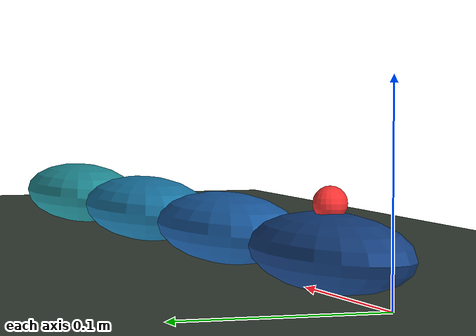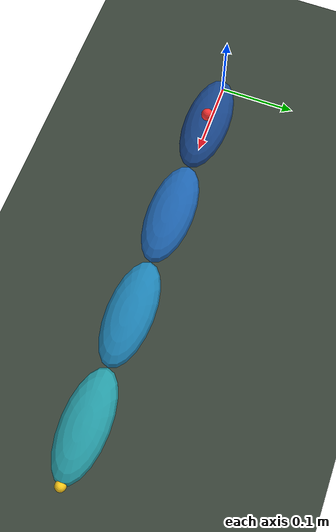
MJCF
<mujoco model="three_dof_ground_crawler_ellipsoid_3d">

  <compiler angle="radian" autolimits="true" inertiafromgeom="true"/>

  <option
    timestep="0.002"
    gravity="0 0 -9.81"
    integrator="implicitfast"
    solver="Newton"
    iterations="50"
    noslip_iterations="5"/>

  <size nconmax="200" njmax="1000"/>

  <visual>
    <headlight ambient="0.35 0.35 0.35" diffuse="0.8 0.8 0.8" specular="0.2 0.2 0.2"/>
    <rgba haze="0.15 0.25 0.35 1"/>
    <global azimuth="135" elevation="-25"/>
  </visual>

  <statistic center="0.29 0 0.06" extent="0.85"/>

  <default>
    <!--
      Long ellipsoid collision geometry.
      MuJoCo ellipsoid size values are the X, Y and Z radii.
      Current full dimensions are 140 x 60 x 36 mm.
    -->
    <default class="link_collision">
      <geom
        type="ellipsoid"
        size="0.070 0.030 0.018"
        mass="0.055"
        friction="1.10 0.005 0.0001"
        solref="0.006 1"
        solimp="0.90 0.95 0.001"
        condim="4"
        contype="1"
        conaffinity="1"
        margin="0.001"
        rgba="0 0 0 0"/>
    </default>

    <!-- Identical ellipsoid used only for visualization. -->
    <default class="link_visual">
      <geom
        type="ellipsoid"
        size="0.070 0.030 0.018"
        contype="0"
        conaffinity="0"
        group="1"/>
    </default>

    <!--
      Servo mass near each hinge. It contributes mass/inertia but is invisible
      and non-colliding, so the visible robot remains purely ellipsoidal.
    -->
    <default class="servo_mass">
      <geom
        type="ellipsoid"
        size="0.0203 0.0103 0.0200"
        mass="0.063"
        rgba="0 0 0 0"
        contype="0"
        conaffinity="0"
        group="3"/>
    </default>

    <!-- -90 to +90 degrees. Axis is overridden per joint below. -->
    <default class="crawler_joint">
      <joint
        type="hinge"
        range="-1.5707963268 1.5707963268"
        limited="true"
        damping="0.30"
        armature="0.002"
        frictionloss="0.05"
        margin="0.035"
        solreflimit="0.004 1"
        solimplimit="0.90 0.99 0.001"/>
    </default>

    <!-- Position command limits also equal -90 to +90 degrees. -->
    <default class="crawler_servo">
      <position
        kp="35"
        ctrlrange="-1.5707963268 1.5707963268"
        ctrllimited="true"
        forcerange="-2.0 2.0"
        forcelimited="true"/>
    </default>
  </default>

  <asset>
    <texture name="ground_tex" type="2d" builtin="checker"
             rgb1="0.18 0.22 0.18" rgb2="0.28 0.32 0.28"
             width="512" height="512"/>
    <material name="ground_mat" texture="ground_tex" texrepeat="8 8" reflectance="0.05"/>
  </asset>

  <worldbody>
    <light name="key_light" pos="0 0 2.5" dir="0 0 -1" directional="true"/>

    <geom
      name="ground"
      type="plane"
      size="5 5 0.1"
      material="ground_mat"
      friction="1.10 0.005 0.0001"
      condim="4"
      contype="1"
      conaffinity="1"/>

    <!-- Root height equals the ellipsoid's vertical radius plus a small clearance. -->
    <body name="segment_0" pos="0 0 0.019">
      <freejoint name="root"/>

      <!-- Segment 0 extends from x=0.00 to x=0.14 m. -->
      <geom name="segment_0_collision" class="link_collision" pos="0.070 0 0"/>
      <geom name="segment_0_visual" class="link_visual" pos="0.070 0 0"
            rgba="0.10 0.28 0.55 1"/>

      <site name="imu_site" pos="0.070 0 0.022" size="0.008" rgba="1 0.2 0.2 1"/>
      <site name="base_reference" pos="0.070 0 0" size="0.006" rgba="0.2 1 0.2 1"/>

      <!-- Joint 1: yaw around local Z. -->
      <body name="segment_1" pos="0.140 0 0">
        <joint name="joint_1" class="crawler_joint" axis="0 0 1"/>
        <geom name="servo_1_mass" class="servo_mass" pos="0 0 0"/>
        <geom name="segment_1_collision" class="link_collision" pos="0.070 0 0"/>
        <geom name="segment_1_visual" class="link_visual" pos="0.070 0 0"
              rgba="0.12 0.40 0.70 1"/>

        <!-- Joint 2: pitch around local Y. -->
        <body name="segment_2" pos="0.140 0 0">
          <joint name="joint_2" class="crawler_joint" axis="0 1 0"/>
          <geom name="servo_2_mass" class="servo_mass" pos="0 0 0"/>
          <geom name="segment_2_collision" class="link_collision" pos="0.070 0 0"/>
          <geom name="segment_2_visual" class="link_visual" pos="0.070 0 0"
                rgba="0.12 0.52 0.72 1"/>

          <!-- Joint 3: pitch around local Y. -->
          <body name="segment_3" pos="0.140 0 0">
            <joint name="joint_3" class="crawler_joint" axis="0 1 0"/>
            <geom name="servo_3_mass" class="servo_mass" pos="0 0 0"/>
            <geom name="segment_3_collision" class="link_collision" pos="0.070 0 0"/>
            <geom name="segment_3_visual" class="link_visual" pos="0.070 0 0"
                  rgba="0.15 0.62 0.66 1"/>

            <site name="tail_tip" pos="0.140 0 0" size="0.007" rgba="1 0.8 0.1 1"/>
          </body>
        </body>
      </body>
    </body>
  </worldbody>

  <actuator>
    <!-- Control values are desired joint angles in radians. -->
    <position name="servo_1" class="crawler_servo" joint="joint_1"/>
    <position name="servo_2" class="crawler_servo" joint="joint_2"/>
    <position name="servo_3" class="crawler_servo" joint="joint_3"/>
  </actuator>

  <sensor>
    <!-- Joint feedback matching the three modified physical servos. -->
    <jointpos name="joint_1_pos" joint="joint_1"/>
    <jointpos name="joint_2_pos" joint="joint_2"/>
    <jointpos name="joint_3_pos" joint="joint_3"/>

    <jointvel name="joint_1_vel" joint="joint_1"/>
    <jointvel name="joint_2_vel" joint="joint_2"/>
    <jointvel name="joint_3_vel" joint="joint_3"/>

    <!-- Body sensing for RL observations. -->
    <framequat name="base_quat" objtype="site" objname="imu_site"/>
    <gyro name="base_gyro" site="imu_site"/>
    <accelerometer name="base_accelerometer" site="imu_site"/>

    <!-- Simulator-only measurements for rewards and debugging. -->
    <framelinvel name="base_linear_velocity" objtype="site" objname="base_reference"/>
    <frameangvel name="base_angular_velocity" objtype="site" objname="base_reference"/>
    <framepos name="base_position" objtype="site" objname="base_reference"/>
  </sensor>

  <keyframe>
    <!-- qpos: root xyz, root quaternion, joint_1, joint_2, joint_3 -->
    <key name="straight" qpos="0 0 0.019 1 0 0 0 0 0 0" ctrl="0 0 0"/>
  </keyframe>
</mujoco>
